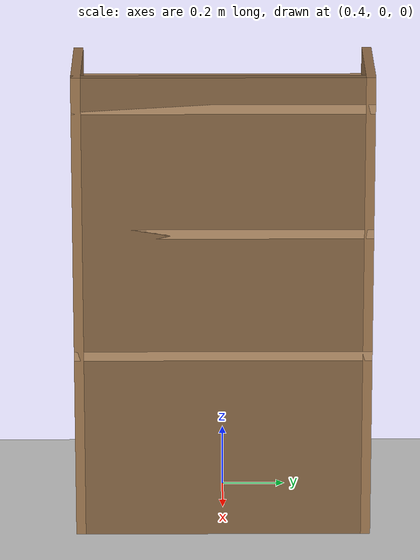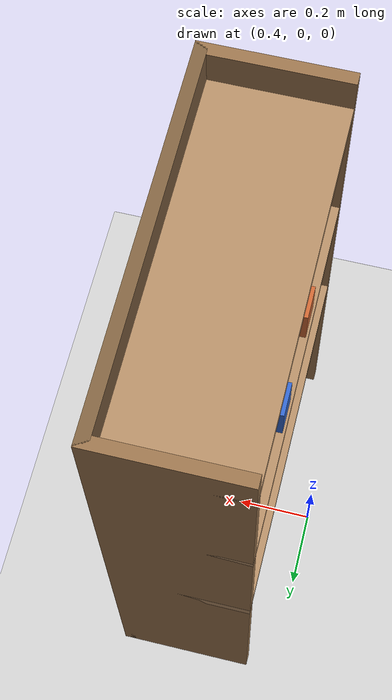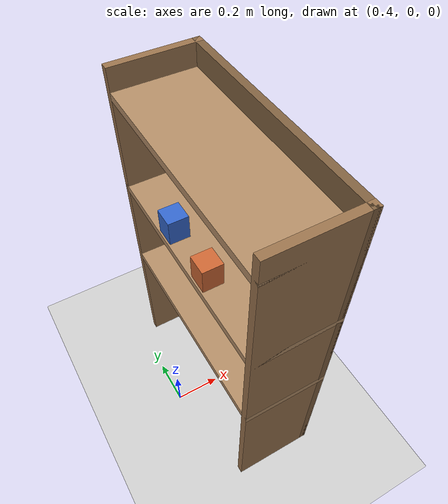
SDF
<?xml version="1.0" ?>
<sdf version="1.6">
  <world name="shelf_scene">
    <gravity>0 0 -9.8</gravity>

    <physics default="1" name="default_physics" type="dart">
      <real_time_update_rate>1000.0</real_time_update_rate>
      <bullet>
        <solver>
          <iters>50</iters>
          <min_step_size>0.0001</min_step_size>
          <sor>1.3</sor>
          <type>quick</type>
        </solver>
        <constraints>
          <contact_surface_layer>0.001</contact_surface_layer>
          <cfm>0.0</cfm>
          <erp>0.2</erp>
          <split_impulse>1</split_impulse>
          <split_impulse_penetration_threshold>-0.01</split_impulse_penetration_threshold>
        </constraints>
      </bullet>
      <max_contacts>20</max_contacts>
      <max_step_size>0.001</max_step_size>
      <real_time_factor>1.0</real_time_factor>
    </physics>

    <include>
      <uri>model://sun</uri>
    </include>
    <include>
      <uri>model://ground_plane</uri>
    </include>

    <model name="shelf_unit">
      <static>true</static>
      <pose>0.65 0 0 0 0 0</pose>

      <!-- Vertical side panels -->
      <link name="side_left">
        <pose>0 0.45 0.75 0 0 0</pose>
        <collision name="c">
          <geometry><box><size>0.35 0.03 1.5</size></box></geometry>
        </collision>
        <visual name="v">
          <geometry><box><size>0.35 0.03 1.5</size></box></geometry>
          <material><ambient>0.6 0.45 0.3 1</ambient><diffuse>0.6 0.45 0.3 1</diffuse></material>
        </visual>
      </link>

      <link name="side_right">
        <pose>0 -0.45 0.75 0 0 0</pose>
        <collision name="c">
          <geometry><box><size>0.35 0.03 1.5</size></box></geometry>
        </collision>
        <visual name="v">
          <geometry><box><size>0.35 0.03 1.5</size></box></geometry>
          <material><ambient>0.6 0.45 0.3 1</ambient><diffuse>0.6 0.45 0.3 1</diffuse></material>
        </visual>
      </link>

      <!-- Horizontal boards: the gaps between these are the compartments the
           planner has to reach into. -->
      <link name="board_bottom">
        <pose>0 0 0.60 0 0 0</pose>
        <collision name="c">
          <geometry><box><size>0.35 0.93 0.03</size></box></geometry>
        </collision>
        <visual name="v">
          <geometry><box><size>0.35 0.93 0.03</size></box></geometry>
          <material><ambient>0.7 0.55 0.4 1</ambient><diffuse>0.7 0.55 0.4 1</diffuse></material>
        </visual>
      </link>

      <link name="board_middle">
        <pose>0 0 1.00 0 0 0</pose>
        <collision name="c">
          <geometry><box><size>0.35 0.93 0.03</size></box></geometry>
        </collision>
        <visual name="v">
          <geometry><box><size>0.35 0.93 0.03</size></box></geometry>
          <material><ambient>0.7 0.55 0.4 1</ambient><diffuse>0.7 0.55 0.4 1</diffuse></material>
        </visual>
      </link>

      <link name="board_top">
        <pose>0 0 1.40 0 0 0</pose>
        <collision name="c">
          <geometry><box><size>0.35 0.93 0.03</size></box></geometry>
        </collision>
        <visual name="v">
          <geometry><box><size>0.35 0.93 0.03</size></box></geometry>
          <material><ambient>0.7 0.55 0.4 1</ambient><diffuse>0.7 0.55 0.4 1</diffuse></material>
        </visual>
      </link>

      <link name="back_panel">
        <pose>0.16 0 0.75 0 0 0</pose>
        <collision name="c">
          <geometry><box><size>0.03 0.93 1.5</size></box></geometry>
        </collision>
        <visual name="v">
          <geometry><box><size>0.03 0.93 1.5</size></box></geometry>
          <material><ambient>0.5 0.38 0.25 1</ambient><diffuse>0.5 0.38 0.25 1</diffuse></material>
        </visual>
      </link>
    </model>

    <!-- One target per arm, standing on the middle board: the dual-arm query
         needs a goal for each side, and a single centred box would put both
         hands in the same compartment. -->
    <model name="box_on_shelf">
      <static>true</static>
      <pose>0.52 0.12 1.07 0 0 0</pose>
      <link name="link">
        <collision name="c">
          <geometry><box><size>0.08 0.08 0.10</size></box></geometry>
        </collision>
        <visual name="v">
          <geometry><box><size>0.08 0.08 0.10</size></box></geometry>
          <material><ambient>0.2 0.4 0.8 1</ambient><diffuse>0.2 0.4 0.8 1</diffuse></material>
        </visual>
      </link>
    </model>

    <model name="box_on_shelf_right">
      <static>true</static>
      <pose>0.52 -0.12 1.07 0 0 0</pose>
      <link name="link">
        <collision name="c">
          <geometry><box><size>0.08 0.08 0.10</size></box></geometry>
        </collision>
        <visual name="v">
          <geometry><box><size>0.08 0.08 0.10</size></box></geometry>
          <material><ambient>0.8 0.4 0.2 1</ambient><diffuse>0.8 0.4 0.2 1</diffuse></material>
        </visual>
      </link>
    </model>
  </world>
</sdf>
